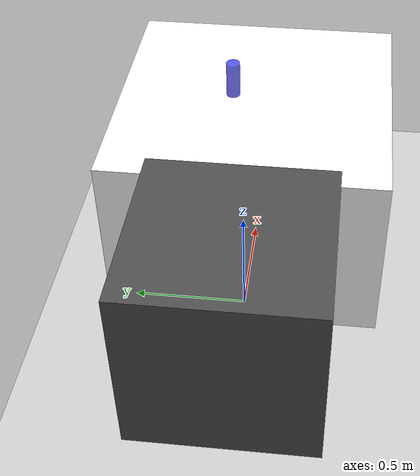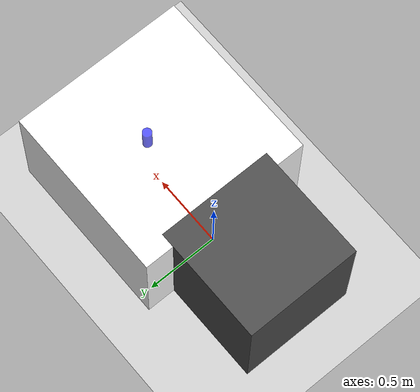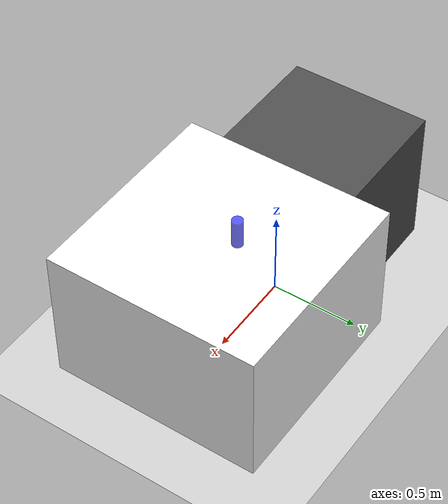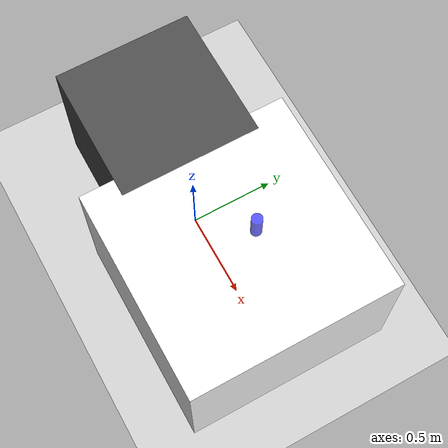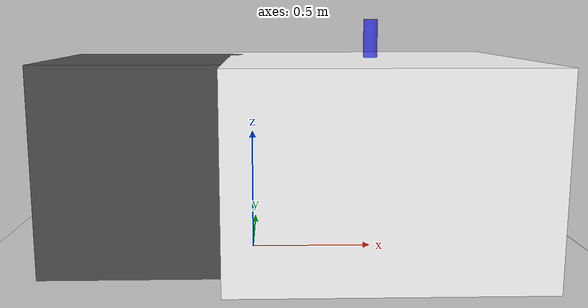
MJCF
<mujoco model="franka_pick_and_place">

  <compiler angle="radian" meshdir="../franka/assets" autolimits="true"/>

  <option integrator="implicitfast"/>

  <asset>
    <material name="table_mat" />
    <material name="bottle_mat" />
  </asset>

  <worldbody>
    <light name="top" pos="0 0 2" mode="trackcom"/>

    <geom type="plane" size="1.5 1.5 0.1" rgba="0.8 0.8 0.8 1" />

    <body name="robot_pedestal" pos="-0.4 0 0.4">
      <geom type="box" size="0.4 0.4 0.4" material="table_mat" rgba="0.3 0.3 0.3 1"
            friction="0.8 0.005 0.0001"/>
    </body>

    <body name="task_table" pos="0.5 0 0.4">
      <geom type="box" size="0.6 0.6 0.4" material="table_mat" rgba="0.5 0.5 0.5 1"
            friction="0.8 0.005 0.0001"/>
    </body>

    <body name="bottle" pos="0.5 0.1 0.88">
      <joint type="free" damping="0.005" />
      <geom name="bottle_geom" type="cylinder" size="0.03 0.08"
            material="bottle_mat" mass="0.5" rgba="0.1 0.1 1 0.7"
            friction="0.4 0.005 0.0001"/>
    </body>

    <body name="robot_base" pos="-0.4 0 0.8">
      <include file="panda_robot.xml"/>
    </body>

  </worldbody>
</mujoco>

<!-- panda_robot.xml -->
<mujoco model="franka_pick_and_place_task">
  <compiler angle="radian" meshdir="../franka/assets" autolimits="true"/>

  <option integrator="implicitfast"/>

  <default>
    <default class="panda">
      <material specular="0.5" shininess="0.25"/>
      <joint armature="0.1" damping="1" axis="0 0 1" range="-2.8973 2.8973"/>
      <general dyntype="none" biastype="affine" ctrlrange="-2.8973 2.8973" forcerange="-87 87"/>
      <default class="finger">
        <joint axis="0 1 0" type="slide" range="0 0.04"/>
      </default>

      <default class="visual">
        <geom type="mesh" contype="0" conaffinity="0" group="2"/>
      </default>
      <default class="collision">
        <geom type="mesh" group="3"/>
        <default class="fingertip_pad_collision_1">
          <geom type="box" size="0.0085 0.004 0.0085" pos="0 0.0055 0.0445"/>
        </default>
        <default class="fingertip_pad_collision_2">
          <geom type="box" size="0.003 0.002 0.003" pos="0.0055 0.002 0.05"/>
        </default>
        <default class="fingertip_pad_collision_3">
          <geom type="box" size="0.003 0.002 0.003" pos="-0.0055 0.002 0.05"/>
        </default>
        <default class="fingertip_pad_collision_4">
          <geom type="box" size="0.003 0.002 0.0035" pos="0.0055 0.002 0.0395"/>
        </default>
        <default class="fingertip_pad_collision_5">
          <geom type="box" size="0.003 0.002 0.0035" pos="-0.0055 0.002 0.0395"/>
        </default>
      </default>
    </default>
  </default>

  <asset>
    <material class="panda" name="white" rgba="1 1 1 1"/>
    <material class="panda" name="off_white" rgba="0.901961 0.921569 0.929412 1"/>
    <material class="panda" name="black" rgba="0.25 0.25 0.25 1"/>
    <material class="panda" name="green" rgba="0 1 0 1"/>
    <material class="panda" name="light_blue" rgba="0.039216 0.541176 0.780392 1"/>

    <!-- Collision meshes -->
    <mesh name="link0_c" file="link0.stl"/>
    <mesh name="link1_c" file="link1.stl"/>
    <mesh name="link2_c" file="link2.stl"/>
    <mesh name="link3_c" file="link3.stl"/>
    <mesh name="link4_c" file="link4.stl"/>
    <mesh name="link5_c0" file="link5_collision_0.obj"/>
    <mesh name="link5_c1" file="link5_collision_1.obj"/>
    <mesh name="link5_c2" file="link5_collision_2.obj"/>
    <mesh name="link6_c" file="link6.stl"/>
    <mesh name="link7_c" file="link7.stl"/>
    <mesh name="hand_c" file="hand.stl"/>

    <!-- Visual meshes -->
    <mesh file="link0_0.obj"/>
    <mesh file="link0_1.obj"/>
    <mesh file="link0_2.obj"/>
    <mesh file="link0_3.obj"/>
    <mesh file="link0_4.obj"/>
    <mesh file="link0_5.obj"/>
    <mesh file="link0_7.obj"/>
    <mesh file="link0_8.obj"/>
    <mesh file="link0_9.obj"/>
    <mesh file="link0_10.obj"/>
    <mesh file="link0_11.obj"/>
    <mesh file="link1.obj"/>
    <mesh file="link2.obj"/>
    <mesh file="link3_0.obj"/>
    <mesh file="link3_1.obj"/>
    <mesh file="link3_2.obj"/>
    <mesh file="link3_3.obj"/>
    <mesh file="link4_0.obj"/>
    <mesh file="link4_1.obj"/>
    <mesh file="link4_2.obj"/>
    <mesh file="link4_3.obj"/>
    <mesh file="link5_0.obj"/>
    <mesh file="link5_1.obj"/>
    <mesh file="link5_2.obj"/>
    <mesh file="link6_0.obj"/>
    <mesh file="link6_1.obj"/>
    <mesh file="link6_2.obj"/>
    <mesh file="link6_3.obj"/>
    <mesh file="link6_4.obj"/>
    <mesh file="link6_5.obj"/>
    <mesh file="link6_6.obj"/>
    <mesh file="link6_7.obj"/>
    <mesh file="link6_8.obj"/>
    <mesh file="link6_9.obj"/>
    <mesh file="link6_10.obj"/>
    <mesh file="link6_11.obj"/>
    <mesh file="link6_12.obj"/>
    <mesh file="link6_13.obj"/>
    <mesh file="link6_14.obj"/>
    <mesh file="link6_15.obj"/>
    <mesh file="link6_16.obj"/>
    <mesh file="link7_0.obj"/>
    <mesh file="link7_1.obj"/>
    <mesh file="link7_2.obj"/>
    <mesh file="link7_3.obj"/>
    <mesh file="link7_4.obj"/>
    <mesh file="link7_5.obj"/>
    <mesh file="link7_6.obj"/>
    <mesh file="link7_7.obj"/>
    <mesh file="hand_0.obj"/>
    <mesh file="hand_1.obj"/>
    <mesh file="hand_2.obj"/>
    <mesh file="hand_3.obj"/>
    <mesh file="hand_4.obj"/>
    <mesh file="finger_0.obj"/>
    <mesh file="finger_1.obj"/>

    <material name="table_mat" />
    <material name="bottle_mat" />
  </asset>

  <worldbody>
    <light name="top" pos="0 0 2" mode="trackcom"/>

    <!-- adding the table and water bottle-->
    <geom type="plane" size="1.5 1.5 0.1" rgba="0.8 0.8 0.8 1" />

    <body name="robot_pedestal" pos="-0.4 0 0.4">
        <geom type="box" size="0.4 0.4 0.4" material="table_mat" rgba="0.3 0.3 0.3 1"
            friction="0.8 0.005 0.0001"/>
    </body>

    <body name="task_table" pos="0.5 0 0.4">
        <geom type="box" size="0.6 0.6 0.4" material="table_mat" rgba="0.5 0.5 0.5 1"
            friction="0.8 0.005 0.0001"/>
    </body>

    <body name="bottle" pos="0.5 0.1 0.88">
        <joint type="free" damping="0.005" />
        <geom name="bottle_geom" type="cylinder" size="0.03 0.08"
            material="bottle_mat" mass="0.5" rgba="0.1 0.1 1 0.7"
            friction="0.4 0.005 0.0001"/>
    </body>

    <body name="link0" childclass="panda" pos="-0.4 0 0.8">
      <inertial mass="0.629769" pos="-0.041018 -0.00014 0.049974"
        fullinertia="0.00315 0.00388 0.004285 8.2904e-7 0.00015 8.2299e-6"/>
      <geom mesh="link0_0" material="off_white" class="visual"/>
      <geom mesh="link0_1" material="black" class="visual"/>
      <geom mesh="link0_2" material="off_white" class="visual"/>
      <geom mesh="link0_3" material="black" class="visual"/>
      <geom mesh="link0_4" material="off_white" class="visual"/>
      <geom mesh="link0_5" material="black" class="visual"/>
      <geom mesh="link0_7" material="white" class="visual"/>
      <geom mesh="link0_8" material="white" class="visual"/>
      <geom mesh="link0_9" material="black" class="visual"/>
      <geom mesh="link0_10" material="off_white" class="visual"/>
      <geom mesh="link0_11" material="white" class="visual"/>
      <geom mesh="link0_c" class="collision"/>
      <body name="link1" pos="0 0 0.333">
        <inertial mass="4.970684" pos="0.003875 0.002081 -0.04762"
          fullinertia="0.70337 0.70661 0.0091170 -0.00013900 0.0067720 0.019169"/>
        <joint name="joint1"/>
        <geom material="white" mesh="link1" class="visual"/>
        <geom mesh="link1_c" class="collision"/>
        <body name="link2" quat="1 -1 0 0">
          <inertial mass="0.646926" pos="-0.003141 -0.02872 0.003495"
            fullinertia="0.0079620 2.8110e-2 2.5995e-2 -3.925e-3 1.0254e-2 7.04e-4"/>
          <joint name="joint2" range="-1.7628 1.7628"/>
          <geom material="white" mesh="link2" class="visual"/>
          <geom mesh="link2_c" class="collision"/>
          <body name="link3" pos="0 -0.316 0" quat="1 1 0 0">
            <joint name="joint3"/>
            <inertial mass="3.228604" pos="2.7518e-2 3.9252e-2 -6.6502e-2"
              fullinertia="3.7242e-2 3.6155e-2 1.083e-2 -4.761e-3 -1.1396e-2 -1.2805e-2"/>
            <geom mesh="link3_0" material="white" class="visual"/>
            <geom mesh="link3_1" material="white" class="visual"/>
            <geom mesh="link3_2" material="white" class="visual"/>
            <geom mesh="link3_3" material="black" class="visual"/>
            <geom mesh="link3_c" class="collision"/>
            <body name="link4" pos="0.0825 0 0" quat="1 1 0 0">
              <inertial mass="3.587895" pos="-5.317e-2 1.04419e-1 2.7454e-2"
                fullinertia="2.5853e-2 1.9552e-2 2.8323e-2 7.796e-3 -1.332e-3 8.641e-3"/>
              <joint name="joint4" range="-3.0718 -0.0698"/>
              <geom mesh="link4_0" material="white" class="visual"/>
              <geom mesh="link4_1" material="white" class="visual"/>
              <geom mesh="link4_2" material="black" class="visual"/>
              <geom mesh="link4_3" material="white" class="visual"/>
              <geom mesh="link4_c" class="collision"/>
              <body name="link5" pos="-0.0825 0.384 0" quat="1 -1 0 0">
                <inertial mass="1.225946" pos="-1.1953e-2 4.1065e-2 -3.8437e-2"
                  fullinertia="3.5549e-2 2.9474e-2 8.627e-3 -2.117e-3 -4.037e-3 2.29e-4"/>
                <joint name="joint5"/>
                <geom mesh="link5_0" material="black" class="visual"/>
                <geom mesh="link5_1" material="white" class="visual"/>
                <geom mesh="link5_2" material="white" class="visual"/>
                <geom mesh="link5_c0" class="collision"/>
                <geom mesh="link5_c1" class="collision"/>
                <geom mesh="link5_c2" class="collision"/>
                <body name="link6" quat="1 1 0 0">
                  <inertial mass="1.666555" pos="6.0149e-2 -1.4117e-2 -1.0517e-2"
                    fullinertia="1.964e-3 4.354e-3 5.433e-3 1.09e-4 -1.158e-3 3.41e-4"/>
                  <joint name="joint6" range="-0.0175 3.7525"/>
                  <geom mesh="link6_0" material="off_white" class="visual"/>
                  <geom mesh="link6_1" material="white" class="visual"/>
                  <geom mesh="link6_2" material="black" class="visual"/>
                  <geom mesh="link6_3" material="white" class="visual"/>
                  <geom mesh="link6_4" material="white" class="visual"/>
                  <geom mesh="link6_5" material="white" class="visual"/>
                  <geom mesh="link6_6" material="white" class="visual"/>
                  <geom mesh="link6_7" material="light_blue" class="visual"/>
                  <geom mesh="link6_8" material="light_blue" class="visual"/>
                  <geom mesh="link6_9" material="black" class="visual"/>
                  <geom mesh="link6_10" material="black" class="visual"/>
                  <geom mesh="link6_11" material="white" class="visual"/>
                  <geom mesh="link6_12" material="green" class="visual"/>
                  <geom mesh="link6_13" material="white" class="visual"/>
                  <geom mesh="link6_14" material="black" class="visual"/>
                  <geom mesh="link6_15" material="black" class="visual"/>
                  <geom mesh="link6_16" material="white" class="visual"/>
                  <geom mesh="link6_c" class="collision"/>
                  <body name="link7" pos="0.088 0 0" quat="1 1 0 0">
                    <inertial mass="7.35522e-01" pos="1.0517e-2 -4.252e-3 6.1597e-2"
                      fullinertia="1.2516e-2 1.0027e-2 4.815e-3 -4.28e-4 -1.196e-3 -7.41e-4"/>
                    <joint name="joint7"/>
                    <geom mesh="link7_0" material="white" class="visual"/>
                    <geom mesh="link7_1" material="black" class="visual"/>
                    <geom mesh="link7_2" material="black" class="visual"/>
                    <geom mesh="link7_3" material="black" class="visual"/>
                    <geom mesh="link7_4" material="black" class="visual"/>
                    <geom mesh="link7_5" material="black" class="visual"/>
                    <geom mesh="link7_6" material="black" class="visual"/>
                    <geom mesh="link7_7" material="white" class="visual"/>
                    <geom mesh="link7_c" class="collision"/>
                    <body name="hand" pos="0 0 0.107" quat="0.9238795 0 0 -0.3826834">
                      <inertial mass="0.73" pos="-0.01 0 0.03" diaginertia="0.001 0.0025 0.0017"/>
                      <geom mesh="hand_0" material="off_white" class="visual"/>
                      <geom mesh="hand_1" material="black" class="visual"/>
                      <geom mesh="hand_2" material="black" class="visual"/>
                      <geom mesh="hand_3" material="white" class="visual"/>
                      <geom mesh="hand_4" material="off_white" class="visual"/>
                      <geom mesh="hand_c" class="collision"/>
                      <body name="left_finger" pos="0 0 0.0584">
                        <inertial mass="0.015" pos="0 0 0" diaginertia="2.375e-6 2.375e-6 7.5e-7"/>
                        <joint name="finger_joint1" class="finger"/>
                        <geom mesh="finger_0" material="off_white" class="visual"/>
                        <geom mesh="finger_1" material="black" class="visual"/>
                        <geom mesh="finger_0" class="collision"/>
                        <geom class="fingertip_pad_collision_1"/>
                        <geom class="fingertip_pad_collision_2"/>
                        <geom class="fingertip_pad_collision_3"/>
                        <geom class="fingertip_pad_collision_4"/>
                        <geom class="fingertip_pad_collision_5"/>
                      </body>
                      <body name="right_finger" pos="0 0 0.0584" quat="0 0 0 1">
                        <inertial mass="0.015" pos="0 0 0" diaginertia="2.375e-6 2.375e-6 7.5e-7"/>
                        <joint name="finger_joint2" class="finger"/>
                        <geom mesh="finger_0" material="off_white" class="visual"/>
                        <geom mesh="finger_1" material="black" class="visual"/>
                        <geom mesh="finger_0" class="collision"/>
                        <geom class="fingertip_pad_collision_1"/>
                        <geom class="fingertip_pad_collision_2"/>
                        <geom class="fingertip_pad_collision_3"/>
                        <geom class="fingertip_pad_collision_4"/>
                        <geom class="fingertip_pad_collision_5"/>
                      </body>
                    </body>
                  </body>
                </body>
              </body>
            </body>
          </body>
        </body>
      </body>
    </body>
  </worldbody>

  <tendon>
    <fixed name="split">
      <joint joint="finger_joint1" coef="0.5"/>
      <joint joint="finger_joint2" coef="0.5"/>
    </fixed>
  </tendon>

  <equality>
    <joint joint1="finger_joint1" joint2="finger_joint2" solimp="0.95 0.99 0.001" solref="0.005 1"/>
  </equality>

  <actuator>
    <general class="panda" name="actuator1" joint="joint1" gainprm="4500" biasprm="0 -4500 -450"/>
    <general class="panda" name="actuator2" joint="joint2" gainprm="4500" biasprm="0 -4500 -450"
      ctrlrange="-1.7628 1.7628"/>
    <general class="panda" name="actuator3" joint="joint3" gainprm="3500" biasprm="0 -3500 -350"/>
    <general class="panda" name="actuator4" joint="joint4" gainprm="3500" biasprm="0 -3500 -350"
      ctrlrange="-3.0718 -0.0698"/>
    <general class="panda" name="actuator5" joint="joint5" gainprm="2000" biasprm="0 -2000 -200" forcerange="-12 12"/>
    <general class="panda" name="actuator6" joint="joint6" gainprm="2000" biasprm="0 -2000 -200" forcerange="-12 12"
      ctrlrange="-0.0175 3.7525"/>
    <general class="panda" name="actuator7" joint="joint7" gainprm="2000" biasprm="0 -2000 -200" forcerange="-12 12"/>
    <!-- Remap original ctrlrange (0, 0.04) to (0, 255): 0.04 * 100 / 255 = 0.01568627451 -->
    <general class="panda" name="actuator8" tendon="split" forcerange="-100 100" ctrlrange="0 255"
      gainprm="0.01568627451 0 0" biasprm="0 -100 -10"/>
  </actuator>

  <keyframe>
    <key name="home" qpos="0 0 0 -1.57079 0 1.57079 -0.7853 0.04 0.04" ctrl="0 0 0 -1.57079 0 1.57079 -0.7853 255"/>
  </keyframe>

  <contact>
    <exclude body1="link0" body2="link1"/>
  </contact>
</mujoco>
